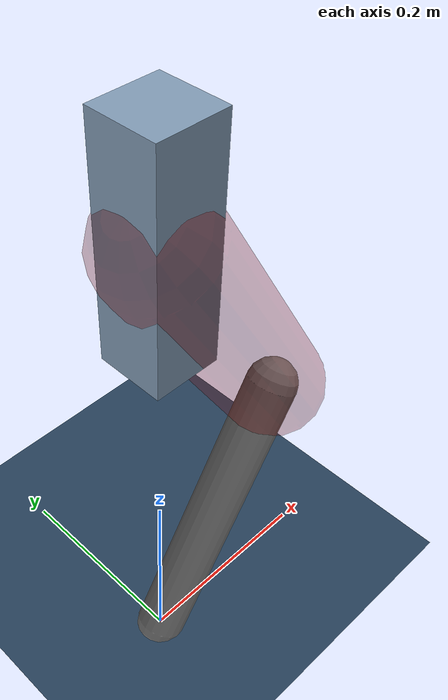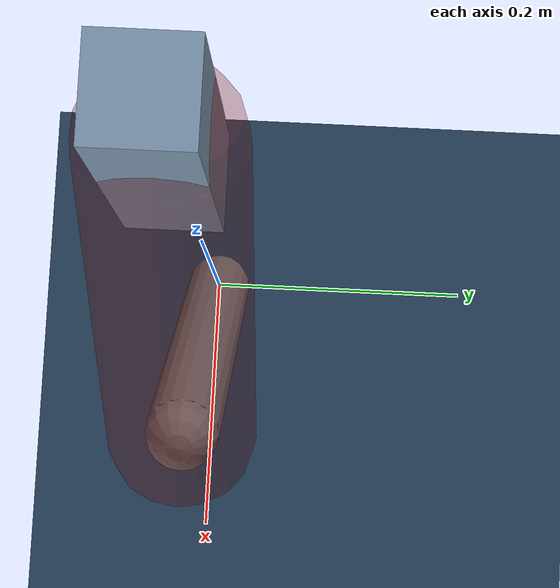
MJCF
<mujoco model="Hopper2D">
	<compiler inertiafromgeom="true" angle="radian" />
	<option timestep="0.001" integrator="implicit" cone="elliptic" solver="Newton" tolerance="1e-10" />

	<default>
		<geom contype="1" conaffinity="1" condim="3" friction="2 0.005 0.0001" solref="0.005 1" />
		<joint limited="true" damping="0.1" />
	</default>

	<asset>
		<texture name="skybox" type="skybox" builtin="gradient" rgb1=".4 .6 .8" rgb2="0 0 0" width="800" height="800" />
		<texture name="grid" type="2d" builtin="checker" rgb1=".1 .2 .3" rgb2=".2 .3 .4" width="300" height="300" mark="edge" markrgb=".2 .3 .4" />
		<material name="ground" texture="grid" texrepeat="1 1" texuniform="true" reflectance="0.1" />
		<material name="leg" rgba="0.5 0.6 0.7 1" />
	</asset>

	<worldbody>

		<geom name="floor" type="plane" size="5 5 0.25" material="ground" />

		<light directional="false" diffuse="0.8 0.8 0.8" specular="0.3 0.3 0.3" pos="0 0 2" dir="0 0 -1" />
		<light mode="targetbodycom" target="base" directional="false" diffuse="0.8 0.8 0.8" specular="0.3 0.3 0.3" pos="0 0 2" dir="0 0 -1" />

		<camera name="fixed" pos="0 -2 1" xyaxes="1 0 0 0 0 1" />
		<camera name="tracking" mode="trackcom" pos="0 -3 1" />

		<body name="root" pos="0 0 0.4902747533880568">
			<joint name="slide_x" type="slide" axis="1 0 0" range="-100 100" />
			<joint name="slide_z" type="slide" axis="0 0 1" range="0 10" />

			<body name="base" pos="0 0 0">
				<geom name="torso" type="box" size="0.03 0.03 0.1" mass="2.397" material="leg" />

				<body name="link1" pos="0 0 0" euler="0 1.0056083839050434 0">
					<joint type="hinge" axis="0 -1 0" pos="0 0 0" name="hinge1" limited="true" range="-3.14 3.14" stiffness="0" damping="0.1" />
					<geom name="thigh" type="capsule" fromto="0 0 0 0.2686503829654399 0 0" size="0.05" rgba="0.5 0 0 0.3" mass="0.9050909957101437" />

					<body name="link2" pos="0.2686503829654399 0 0" euler="0 1.0651433027362691 0">
						<joint type="hinge" axis="0 -1 0" pos="0 0 0" name="hinge2" limited="true" range="-3.14 3.14" stiffness="0" damping="0.1" />
						<geom name="shank" type="capsule" fromto="0 0 0 0.30013850358117666 0 0" size="0.025" mass="0.48351080286494136" />

					</body>
				</body>
			</body>
		</body>
	</worldbody>

	<actuator>
		<motor name="torque1" joint="hinge1" ctrlrange="-96.08034621494255 96.08034621494255" ctrllimited="true" gear="1" />
		<motor name="torque2" joint="hinge2" ctrlrange="-39.7923867540654 39.7923867540654" ctrllimited="true" gear="1" />
	</actuator>
</mujoco>
